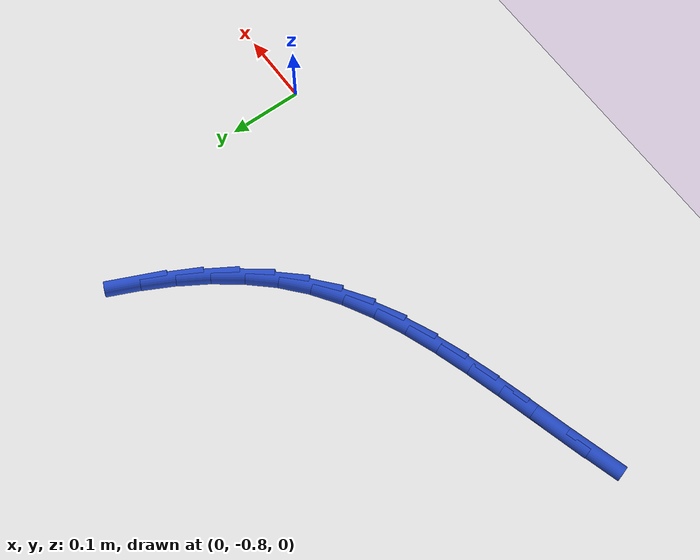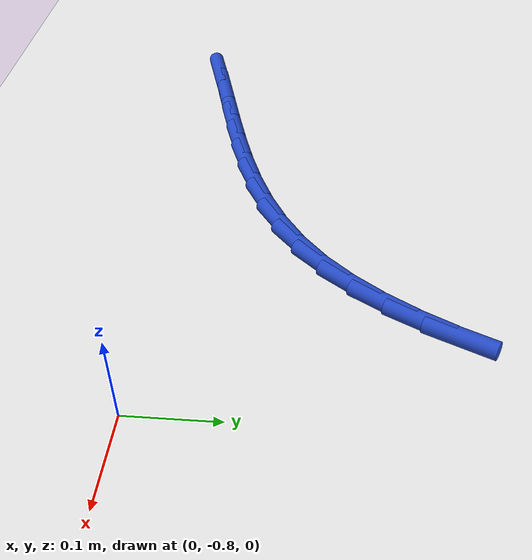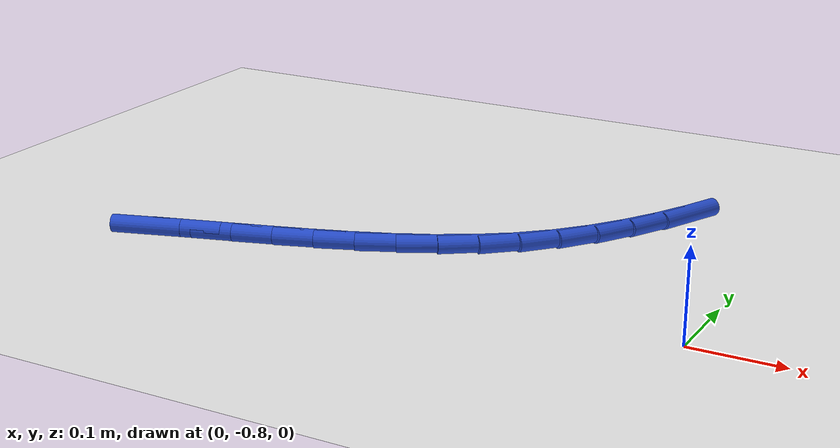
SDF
<sdf version="1.6">
 <world name="default">
  <model name="ground_plane">
   <static>1</static>
   <link name="link">
    <collision name="collision">
     <geometry><plane><normal>0 0 1</normal><size>100 100</size></plane></geometry>
     <surface><friction><ode><mu>100</mu><mu2>50</mu2></ode></friction></surface>
    </collision>
    <visual name="visual">
     <cast_shadows>0</cast_shadows>
     <geometry><plane><normal>0 0 1</normal><size>100 100</size></plane></geometry>
     <material>
      <script><uri>file://media/materials/scripts/gazebo.material</uri><name>Gazebo/WhiteGlow</name></script>
     </material>
    </visual>
   </link>
  </model>
  <model name="line">
   <link name="link_155">
    <pose>-0.6201273450438022 -0.8001264009872326 0.01 0 1.57 0.2961326589648987</pose>
    <collision name="collision">
     <geometry><cylinder><radius>0.01</radius><length>0.08</length></cylinder></geometry>
    </collision>
    <visual name="visual">
     <material>
      <script><name>Gazebo/Blue</name><uri>file://media/materials/scripts/gazebo.material</uri></script>
     </material>
     <geometry><cylinder><radius>0.01</radius><length>0.08</length></cylinder></geometry>
    </visual>
   </link>
   <link name="link_156">
    <pose>-0.5759371218332019 -0.7866437920292118 0.01 0 1.57 0.2820760800055888</pose>
    <collision name="collision">
     <geometry><cylinder><radius>0.01</radius><length>0.08</length></cylinder></geometry>
    </collision>
    <visual name="visual">
     <material>
      <script><name>Gazebo/Blue</name><uri>file://media/materials/scripts/gazebo.material</uri></script>
     </material>
     <geometry><cylinder><radius>0.01</radius><length>0.08</length></cylinder></geometry>
    </visual>
   </link>
   <link name="link_157">
    <pose>-0.5313737970538778 -0.7737291882130065 0.01 0 1.57 0.2822781070711573</pose>
    <collision name="collision">
     <geometry><cylinder><radius>0.01</radius><length>0.08</length></cylinder></geometry>
    </collision>
    <visual name="visual">
     <material>
      <script><name>Gazebo/Blue</name><uri>file://media/materials/scripts/gazebo.material</uri></script>
     </material>
     <geometry><cylinder><radius>0.01</radius><length>0.08</length></cylinder></geometry>
    </visual>
   </link>
   <link name="link_158">
    <pose>-0.48687020451729274 -0.7608221483914446 0.01 0 1.57 0.2967973131435308</pose>
    <collision name="collision">
     <geometry><cylinder><radius>0.01</radius><length>0.08</length></cylinder></geometry>
    </collision>
    <visual name="visual">
     <material>
      <script><name>Gazebo/Blue</name><uri>file://media/materials/scripts/gazebo.material</uri></script>
     </material>
     <geometry><cylinder><radius>0.01</radius><length>0.08</length></cylinder></geometry>
    </visual>
   </link>
   <link name="link_159">
    <pose>-0.4428591780349087 -0.747362231417355 0.01 0 1.57 0.3261590546356021</pose>
    <collision name="collision">
     <geometry><cylinder><radius>0.01</radius><length>0.08</length></cylinder></geometry>
    </collision>
    <visual name="visual">
     <material>
      <script><name>Gazebo/Blue</name><uri>file://media/materials/scripts/gazebo.material</uri></script>
     </material>
     <geometry><cylinder><radius>0.01</radius><length>0.08</length></cylinder></geometry>
    </visual>
   </link>
   <link name="link_160">
    <pose>-0.39977355141819026 -0.732788996143566 0.01 0 1.57 0.37130080008806166</pose>
    <collision name="collision">
     <geometry><cylinder><radius>0.01</radius><length>0.08</length></cylinder></geometry>
    </collision>
    <visual name="visual">
     <material>
      <script><name>Gazebo/Blue</name><uri>file://media/materials/scripts/gazebo.material</uri></script>
     </material>
     <geometry><cylinder><radius>0.01</radius><length>0.08</length></cylinder></geometry>
    </visual>
   </link>
   <link name="link_161">
    <pose>-0.3580461584785998 -0.7165420014229066 0.01 0 1.57 0.43341972168974735</pose>
    <collision name="collision">
     <geometry><cylinder><radius>0.01</radius><length>0.08</length></cylinder></geometry>
    </collision>
    <visual name="visual">
     <material>
      <script><name>Gazebo/Blue</name><uri>file://media/materials/scripts/gazebo.material</uri></script>
     </material>
     <geometry><cylinder><radius>0.01</radius><length>0.08</length></cylinder></geometry>
    </visual>
   </link>
   <link name="link_162">
    <pose>-0.31810983302760004 -0.698060806108205 0.01 0 1.57 0.5136494911870124</pose>
    <collision name="collision">
     <geometry><cylinder><radius>0.01</radius><length>0.08</length></cylinder></geometry>
    </collision>
    <visual name="visual">
     <material>
      <script><name>Gazebo/Blue</name><uri>file://media/materials/scripts/gazebo.material</uri></script>
     </material>
     <geometry><cylinder><radius>0.01</radius><length>0.08</length></cylinder></geometry>
    </visual>
   </link>
   <link name="link_163">
    <pose>-0.2803974088766539 -0.6767849690522896 0.01 0 1.57 0.6124839416456846</pose>
    <collision name="collision">
     <geometry><cylinder><radius>0.01</radius><length>0.08</length></cylinder></geometry>
    </collision>
    <visual name="visual">
     <material>
      <script><name>Gazebo/Blue</name><uri>file://media/materials/scripts/gazebo.material</uri></script>
     </material>
     <geometry><cylinder><radius>0.01</radius><length>0.08</length></cylinder></geometry>
    </visual>
   </link>
   <link name="link_164">
    <pose>-0.24534171983722428 -0.6521540491079891 0.01 0 1.57 0.727561050793714</pose>
    <collision name="collision">
     <geometry><cylinder><radius>0.01</radius><length>0.08</length></cylinder></geometry>
    </collision>
    <visual name="visual">
     <material>
      <script><name>Gazebo/Blue</name><uri>file://media/materials/scripts/gazebo.material</uri></script>
     </material>
     <geometry><cylinder><radius>0.01</radius><length>0.08</length></cylinder></geometry>
    </visual>
   </link>
   <link name="link_165">
    <pose>-0.21334441459481837 -0.6236593340672876 0.01 0 1.57 0.8397237653315627</pose>
    <collision name="collision">
     <geometry><cylinder><radius>0.01</radius><length>0.08</length></cylinder></geometry>
    </collision>
    <visual name="visual">
     <material>
      <script><name>Gazebo/Blue</name><uri>file://media/materials/scripts/gazebo.material</uri></script>
     </material>
     <geometry><cylinder><radius>0.01</radius><length>0.08</length></cylinder></geometry>
    </visual>
   </link>
   <link name="link_166">
    <pose>-0.18442938804914072 -0.5914187182213703 0.01 0 1.57 0.9369141691040077</pose>
    <collision name="collision">
     <geometry><cylinder><radius>0.01</radius><length>0.08</length></cylinder></geometry>
    </collision>
    <visual name="visual">
     <material>
      <script><name>Gazebo/Blue</name><uri>file://media/materials/scripts/gazebo.material</uri></script>
     </material>
     <geometry><cylinder><radius>0.01</radius><length>0.08</length></cylinder></geometry>
    </visual>
   </link>
   <link name="link_167">
    <pose>-0.158369392336374 -0.5559666838448173 0.01 0 1.57 1.0195716464762972</pose>
    <collision name="collision">
     <geometry><cylinder><radius>0.01</radius><length>0.08</length></cylinder></geometry>
    </collision>
    <visual name="visual">
     <material>
      <script><name>Gazebo/Blue</name><uri>file://media/materials/scripts/gazebo.material</uri></script>
     </material>
     <geometry><cylinder><radius>0.01</radius><length>0.08</length></cylinder></geometry>
    </visual>
   </link>
   <link name="link_168">
    <pose>-0.13493264701138138 -0.517845231720349 0.01 0 1.57 1.0890137451327069</pose>
    <collision name="collision">
     <geometry><cylinder><radius>0.01</radius><length>0.08</length></cylinder></geometry>
    </collision>
    <visual name="visual">
     <material>
      <script><name>Gazebo/Blue</name><uri>file://media/materials/scripts/gazebo.material</uri></script>
     </material>
     <geometry><cylinder><radius>0.01</radius><length>0.08</length></cylinder></geometry>
    </visual>
   </link>
   <link name="link_169">
    <pose>-0.1138873716290261 -0.4775963626306855 0.01 0 1.57 1.1467472061756965</pose>
    <collision name="collision">
     <geometry><cylinder><radius>0.01</radius><length>0.08</length></cylinder></geometry>
    </collision>
    <visual name="visual">
     <material>
      <script><name>Gazebo/Blue</name><uri>file://media/materials/scripts/gazebo.material</uri></script>
     </material>
     <geometry><cylinder><radius>0.01</radius><length>0.08</length></cylinder></geometry>
    </visual>
   </link>
  </model>
 </world>
</sdf>
